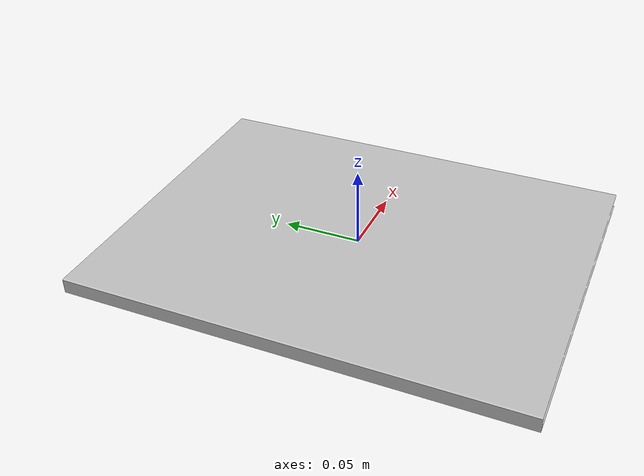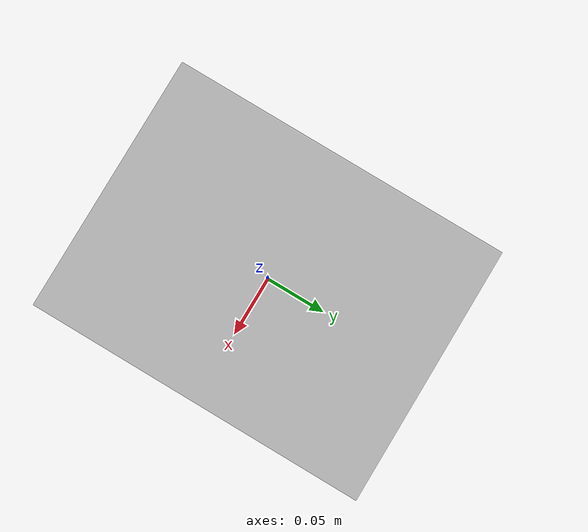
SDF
<?xml version='1.0'?>
<sdf version="1.4">
	<model name="book1">
		<static>1</static>
		<link name="link">
			<visual name="mesh">
				<geometry>
					<mesh>
						<uri>model://meshes/book1.dae</uri>
					</mesh>
				</geometry>
			</visual>
			<collision name="collider">
				<pose>0 0 0 0 0 0</pose>
				<geometry>
					<box>
						<size>0.22 0.288 0.01</size>
					</box>
				</geometry>
			</collision>
		</link>
	</model>
</sdf>
